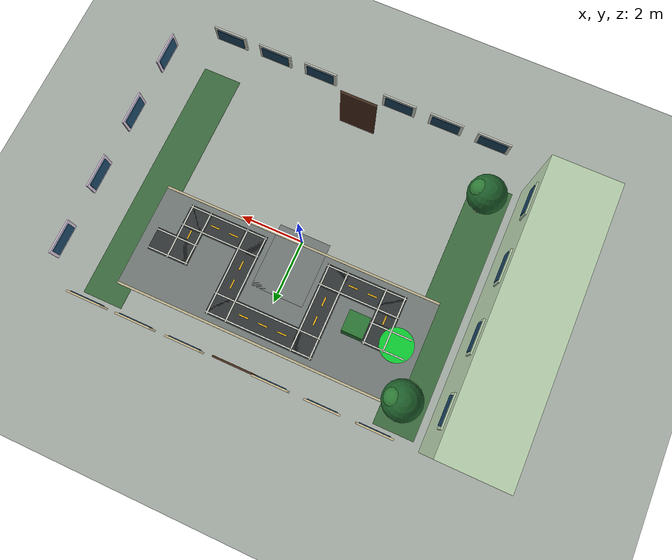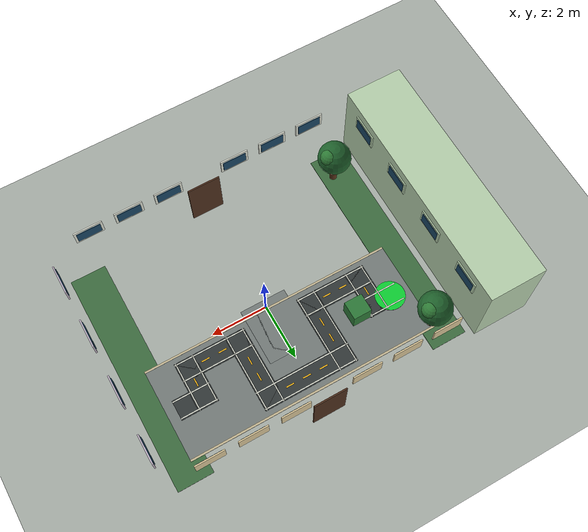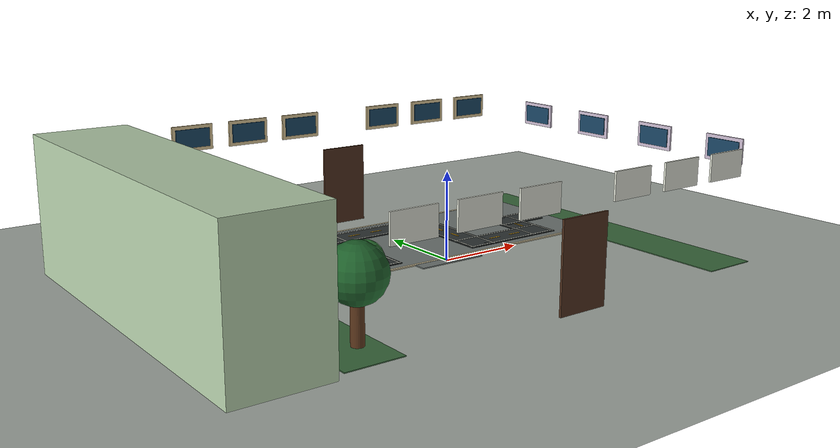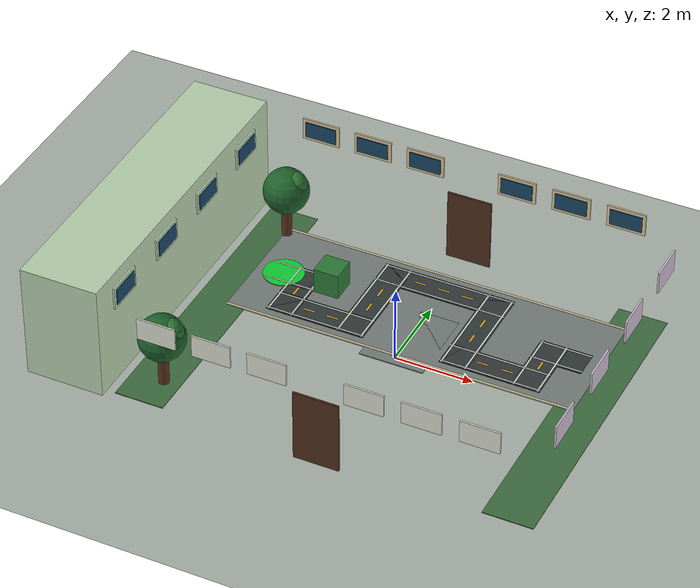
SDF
<sdf version="1.9">
 <world name="campus_world">
  <model name="ground">
   <static>true</static>
   <link name="ground_link">
    <collision name="ground_collision">
     <geometry><plane><normal>0 0 1</normal><size>100 100</size></plane></geometry>
    </collision>
    <visual name="ground_visual">
     <geometry><plane><normal>0 0 1</normal><size>100 100</size></plane></geometry>
     <material><diffuse>0.66 0.69 0.66 1</diffuse></material>
    </visual>
   </link>
  </model>
  <model name="start_marker">
   <static>true</static>
   <pose>-3.8 1.7 0.042 0 0 0</pose>
   <link name="marker_link">
    <visual name="green_start_pad">
     <geometry><cylinder><radius>0.52</radius><length>0.02</length></cylinder></geometry>
     <material><diffuse>0.05 0.82 0.20 1</diffuse></material>
    </visual>
   </link>
  </model>
  <model name="campus_route_roadmap">
   <static>true</static>
   <link name="road_visuals">
    <visual name="asphalt_start_approach">
     <pose>-3.500 1.700 0.0415 0 0 0</pose>
     <geometry><box><size>1.320 0.720 0.0180</size></box></geometry>
     <material>
      <ambient>0.20 0.22 0.22 1</ambient>
      <diffuse>0.20 0.22 0.22 1</diffuse>
      <specular>0.04 0.04 0.04 1</specular>
     </material>
    </visual>
    <visual name="edge_north_start_approach">
     <pose>-3.500 2.005 0.0525 0 0 0</pose>
     <geometry><box><size>1.320 0.042 0.0035</size></box></geometry>
     <material>
      <ambient>0.88 0.89 0.84 1</ambient>
      <diffuse>0.88 0.89 0.84 1</diffuse>
      <specular>0.04 0.04 0.04 1</specular>
     </material>
    </visual>
    <visual name="edge_south_start_approach">
     <pose>-3.500 1.395 0.0525 0 0 0</pose>
     <geometry><box><size>1.320 0.042 0.0035</size></box></geometry>
     <material>
      <ambient>0.88 0.89 0.84 1</ambient>
      <diffuse>0.88 0.89 0.84 1</diffuse>
      <specular>0.04 0.04 0.04 1</specular>
     </material>
    </visual>
    <visual name="asphalt_down_before_block_1">
     <pose>-3.200 1.175 0.0415 0 0 0</pose>
     <geometry><box><size>0.720 1.770 0.0180</size></box></geometry>
     <material>
      <ambient>0.20 0.22 0.22 1</ambient>
      <diffuse>0.20 0.22 0.22 1</diffuse>
      <specular>0.04 0.04 0.04 1</specular>
     </material>
    </visual>
    <visual name="edge_east_down_before_block_1">
     <pose>-2.895 1.175 0.0525 0 0 0</pose>
     <geometry><box><size>0.042 1.770 0.0035</size></box></geometry>
     <material>
      <ambient>0.88 0.89 0.84 1</ambient>
      <diffuse>0.88 0.89 0.84 1</diffuse>
      <specular>0.04 0.04 0.04 1</specular>
     </material>
    </visual>
    <visual name="edge_west_down_before_block_1">
     <pose>-3.505 1.175 0.0525 0 0 0</pose>
     <geometry><box><size>0.042 1.770 0.0035</size></box></geometry>
     <material>
      <ambient>0.88 0.89 0.84 1</ambient>
      <diffuse>0.88 0.89 0.84 1</diffuse>
      <specular>0.04 0.04 0.04 1</specular>
     </material>
    </visual>
    <visual name="yellow_dash_down_before_block_1_1">
     <pose>-3.200 1.175 0.0530 0 0 0</pose>
     <geometry><box><size>0.044 0.300 0.0035</size></box></geometry>
     <material>
      <ambient>0.98 0.73 0.10 1</ambient>
      <diffuse>0.98 0.73 0.10 1</diffuse>
      <specular>0.04 0.04 0.04 1</specular>
     </material>
    </visual>
    <visual name="asphalt_below_block_1">
     <pose>-2.275 0.650 0.0415 0 0 0</pose>
     <geometry><box><size>2.570 0.720 0.0180</size></box></geometry>
     <material>
      <ambient>0.20 0.22 0.22 1</ambient>
      <diffuse>0.20 0.22 0.22 1</diffuse>
      <specular>0.04 0.04 0.04 1</specular>
     </material>
    </visual>
    <visual name="edge_north_below_block_1">
     <pose>-2.275 0.955 0.0525 0 0 0</pose>
     <geometry><box><size>2.570 0.042 0.0035</size></box></geometry>
     <material>
      <ambient>0.88 0.89 0.84 1</ambient>
      <diffuse>0.88 0.89 0.84 1</diffuse>
      <specular>0.04 0.04 0.04 1</specular>
     </material>
    </visual>
    <visual name="edge_south_below_block_1">
     <pose>-2.275 0.345 0.0525 0 0 0</pose>
     <geometry><box><size>2.570 0.042 0.0035</size></box></geometry>
     <material>
      <ambient>0.88 0.89 0.84 1</ambient>
      <diffuse>0.88 0.89 0.84 1</diffuse>
      <specular>0.04 0.04 0.04 1</specular>
     </material>
    </visual>
    <visual name="yellow_dash_below_block_1_1">
     <pose>-2.585 0.650 0.0530 0 0 0</pose>
     <geometry><box><size>0.300 0.044 0.0035</size></box></geometry>
     <material>
      <ambient>0.98 0.73 0.10 1</ambient>
      <diffuse>0.98 0.73 0.10 1</diffuse>
      <specular>0.04 0.04 0.04 1</specular>
     </material>
    </visual>
    <visual name="yellow_dash_below_block_1_2">
     <pose>-1.965 0.650 0.0530 0 0 0</pose>
     <geometry><box><size>0.300 0.044 0.0035</size></box></geometry>
     <material>
      <ambient>0.98 0.73 0.10 1</ambient>
      <diffuse>0.98 0.73 0.10 1</diffuse>
      <specular>0.04 0.04 0.04 1</specular>
     </material>
    </visual>
    <visual name="asphalt_up_between_blocks_1_2">
     <pose>-1.350 1.700 0.0415 0 0 0</pose>
     <geometry><box><size>0.720 2.820 0.0180</size></box></geometry>
     <material>
      <ambient>0.20 0.22 0.22 1</ambient>
      <diffuse>0.20 0.22 0.22 1</diffuse>
      <specular>0.04 0.04 0.04 1</specular>
     </material>
    </visual>
    <visual name="edge_east_up_between_blocks_1_2">
     <pose>-1.045 1.700 0.0525 0 0 0</pose>
     <geometry><box><size>0.042 2.820 0.0035</size></box></geometry>
     <material>
      <ambient>0.88 0.89 0.84 1</ambient>
      <diffuse>0.88 0.89 0.84 1</diffuse>
      <specular>0.04 0.04 0.04 1</specular>
     </material>
    </visual>
    <visual name="edge_west_up_between_blocks_1_2">
     <pose>-1.655 1.700 0.0525 0 0 0</pose>
     <geometry><box><size>0.042 2.820 0.0035</size></box></geometry>
     <material>
      <ambient>0.88 0.89 0.84 1</ambient>
      <diffuse>0.88 0.89 0.84 1</diffuse>
      <specular>0.04 0.04 0.04 1</specular>
     </material>
    </visual>
    <visual name="yellow_dash_up_between_blocks_1_2_1">
     <pose>-1.350 1.390 0.0530 0 0 0</pose>
     <geometry><box><size>0.044 0.300 0.0035</size></box></geometry>
     <material>
      <ambient>0.98 0.73 0.10 1</ambient>
      <diffuse>0.98 0.73 0.10 1</diffuse>
      <specular>0.04 0.04 0.04 1</specular>
     </material>
    </visual>
    <visual name="yellow_dash_up_between_blocks_1_2_2">
     <pose>-1.350 2.010 0.0530 0 0 0</pose>
     <geometry><box><size>0.044 0.300 0.0035</size></box></geometry>
     <material>
      <ambient>0.98 0.73 0.10 1</ambient>
      <diffuse>0.98 0.73 0.10 1</diffuse>
      <specular>0.04 0.04 0.04 1</specular>
     </material>
    </visual>
    <visual name="asphalt_above_block_2">
     <pose>0.000 2.750 0.0415 0 0 0</pose>
     <geometry><box><size>3.420 0.720 0.0180</size></box></geometry>
     <material>
      <ambient>0.20 0.22 0.22 1</ambient>
      <diffuse>0.20 0.22 0.22 1</diffuse>
      <specular>0.04 0.04 0.04 1</specular>
     </material>
    </visual>
    <visual name="edge_north_above_block_2">
     <pose>0.000 3.055 0.0525 0 0 0</pose>
     <geometry><box><size>3.420 0.042 0.0035</size></box></geometry>
     <material>
      <ambient>0.88 0.89 0.84 1</ambient>
      <diffuse>0.88 0.89 0.84 1</diffuse>
      <specular>0.04 0.04 0.04 1</specular>
     </material>
    </visual>
    <visual name="edge_south_above_block_2">
     <pose>0.000 2.445 0.0525 0 0 0</pose>
     <geometry><box><size>3.420 0.042 0.0035</size></box></geometry>
     <material>
      <ambient>0.88 0.89 0.84 1</ambient>
      <diffuse>0.88 0.89 0.84 1</diffuse>
      <specular>0.04 0.04 0.04 1</specular>
     </material>
    </visual>
    <visual name="yellow_dash_above_block_2_1">
     <pose>-0.620 2.750 0.0530 0 0 0</pose>
     <geometry><box><size>0.300 0.044 0.0035</size></box></geometry>
     <material>
      <ambient>0.98 0.73 0.10 1</ambient>
      <diffuse>0.98 0.73 0.10 1</diffuse>
      <specular>0.04 0.04 0.04 1</specular>
     </material>
    </visual>
    <visual name="yellow_dash_above_block_2_2">
     <pose>0.000 2.750 0.0530 0 0 0</pose>
     <geometry><box><size>0.300 0.044 0.0035</size></box></geometry>
     <material>
      <ambient>0.98 0.73 0.10 1</ambient>
      <diffuse>0.98 0.73 0.10 1</diffuse>
      <specular>0.04 0.04 0.04 1</specular>
     </material>
    </visual>
    <visual name="yellow_dash_above_block_2_3">
     <pose>0.620 2.750 0.0530 0 0 0</pose>
     <geometry><box><size>0.300 0.044 0.0035</size></box></geometry>
     <material>
      <ambient>0.98 0.73 0.10 1</ambient>
      <diffuse>0.98 0.73 0.10 1</diffuse>
      <specular>0.04 0.04 0.04 1</specular>
     </material>
    </visual>
    <visual name="asphalt_down_between_blocks_2_3">
     <pose>1.350 1.700 0.0415 0 0 0</pose>
     <geometry><box><size>0.720 2.820 0.0180</size></box></geometry>
     <material>
      <ambient>0.20 0.22 0.22 1</ambient>
      <diffuse>0.20 0.22 0.22 1</diffuse>
      <specular>0.04 0.04 0.04 1</specular>
     </material>
    </visual>
    <visual name="edge_east_down_between_blocks_2_3">
     <pose>1.655 1.700 0.0525 0 0 0</pose>
     <geometry><box><size>0.042 2.820 0.0035</size></box></geometry>
     <material>
      <ambient>0.88 0.89 0.84 1</ambient>
      <diffuse>0.88 0.89 0.84 1</diffuse>
      <specular>0.04 0.04 0.04 1</specular>
     </material>
    </visual>
    <visual name="edge_west_down_between_blocks_2_3">
     <pose>1.045 1.700 0.0525 0 0 0</pose>
     <geometry><box><size>0.042 2.820 0.0035</size></box></geometry>
     <material>
      <ambient>0.88 0.89 0.84 1</ambient>
      <diffuse>0.88 0.89 0.84 1</diffuse>
      <specular>0.04 0.04 0.04 1</specular>
     </material>
    </visual>
    <visual name="yellow_dash_down_between_blocks_2_3_1">
     <pose>1.350 1.390 0.0530 0 0 0</pose>
     <geometry><box><size>0.044 0.300 0.0035</size></box></geometry>
     <material>
      <ambient>0.98 0.73 0.10 1</ambient>
      <diffuse>0.98 0.73 0.10 1</diffuse>
      <specular>0.04 0.04 0.04 1</specular>
     </material>
    </visual>
    <visual name="yellow_dash_down_between_blocks_2_3_2">
     <pose>1.350 2.010 0.0530 0 0 0</pose>
     <geometry><box><size>0.044 0.300 0.0035</size></box></geometry>
     <material>
      <ambient>0.98 0.73 0.10 1</ambient>
      <diffuse>0.98 0.73 0.10 1</diffuse>
      <specular>0.04 0.04 0.04 1</specular>
     </material>
    </visual>
    <visual name="asphalt_below_block_3">
     <pose>2.275 0.650 0.0415 0 0 0</pose>
     <geometry><box><size>2.570 0.720 0.0180</size></box></geometry>
     <material>
      <ambient>0.20 0.22 0.22 1</ambient>
      <diffuse>0.20 0.22 0.22 1</diffuse>
      <specular>0.04 0.04 0.04 1</specular>
     </material>
    </visual>
    <visual name="edge_north_below_block_3">
     <pose>2.275 0.955 0.0525 0 0 0</pose>
     <geometry><box><size>2.570 0.042 0.0035</size></box></geometry>
     <material>
      <ambient>0.88 0.89 0.84 1</ambient>
      <diffuse>0.88 0.89 0.84 1</diffuse>
      <specular>0.04 0.04 0.04 1</specular>
     </material>
    </visual>
    <visual name="edge_south_below_block_3">
     <pose>2.275 0.345 0.0525 0 0 0</pose>
     <geometry><box><size>2.570 0.042 0.0035</size></box></geometry>
     <material>
      <ambient>0.88 0.89 0.84 1</ambient>
      <diffuse>0.88 0.89 0.84 1</diffuse>
      <specular>0.04 0.04 0.04 1</specular>
     </material>
    </visual>
    <visual name="yellow_dash_below_block_3_1">
     <pose>1.965 0.650 0.0530 0 0 0</pose>
     <geometry><box><size>0.300 0.044 0.0035</size></box></geometry>
     <material>
      <ambient>0.98 0.73 0.10 1</ambient>
      <diffuse>0.98 0.73 0.10 1</diffuse>
      <specular>0.04 0.04 0.04 1</specular>
     </material>
    </visual>
    <visual name="yellow_dash_below_block_3_2">
     <pose>2.585 0.650 0.0530 0 0 0</pose>
     <geometry><box><size>0.300 0.044 0.0035</size></box></geometry>
     <material>
      <ambient>0.98 0.73 0.10 1</ambient>
      <diffuse>0.98 0.73 0.10 1</diffuse>
      <specular>0.04 0.04 0.04 1</specular>
     </material>
    </visual>
    <visual name="asphalt_up_after_block_3">
     <pose>3.200 1.175 0.0415 0 0 0</pose>
     <geometry><box><size>0.720 1.770 0.0180</size></box></geometry>
     <material>
      <ambient>0.20 0.22 0.22 1</ambient>
      <diffuse>0.20 0.22 0.22 1</diffuse>
      <specular>0.04 0.04 0.04 1</specular>
     </material>
    </visual>
    <visual name="edge_east_up_after_block_3">
     <pose>3.505 1.175 0.0525 0 0 0</pose>
     <geometry><box><size>0.042 1.770 0.0035</size></box></geometry>
     <material>
      <ambient>0.88 0.89 0.84 1</ambient>
      <diffuse>0.88 0.89 0.84 1</diffuse>
      <specular>0.04 0.04 0.04 1</specular>
     </material>
    </visual>
    <visual name="edge_west_up_after_block_3">
     <pose>2.895 1.175 0.0525 0 0 0</pose>
     <geometry><box><size>0.042 1.770 0.0035</size></box></geometry>
     <material>
      <ambient>0.88 0.89 0.84 1</ambient>
      <diffuse>0.88 0.89 0.84 1</diffuse>
      <specular>0.04 0.04 0.04 1</specular>
     </material>
    </visual>
    <visual name="yellow_dash_up_after_block_3_1">
     <pose>3.200 1.175 0.0530 0 0 0</pose>
     <geometry><box><size>0.044 0.300 0.0035</size></box></geometry>
     <material>
      <ambient>0.98 0.73 0.10 1</ambient>
      <diffuse>0.98 0.73 0.10 1</diffuse>
      <specular>0.04 0.04 0.04 1</specular>
     </material>
    </visual>
    <visual name="asphalt_finish_approach">
     <pose>3.500 1.700 0.0415 0 0 0</pose>
     <geometry><box><size>1.320 0.720 0.0180</size></box></geometry>
     <material>
      <ambient>0.20 0.22 0.22 1</ambient>
      <diffuse>0.20 0.22 0.22 1</diffuse>
      <specular>0.04 0.04 0.04 1</specular>
     </material>
    </visual>
    <visual name="edge_north_finish_approach">
     <pose>3.500 2.005 0.0525 0 0 0</pose>
     <geometry><box><size>1.320 0.042 0.0035</size></box></geometry>
     <material>
      <ambient>0.88 0.89 0.84 1</ambient>
      <diffuse>0.88 0.89 0.84 1</diffuse>
      <specular>0.04 0.04 0.04 1</specular>
     </material>
    </visual>
    <visual name="edge_south_finish_approach">
     <pose>3.500 1.395 0.0525 0 0 0</pose>
     <geometry><box><size>1.320 0.042 0.0035</size></box></geometry>
     <material>
      <ambient>0.88 0.89 0.84 1</ambient>
      <diffuse>0.88 0.89 0.84 1</diffuse>
      <specular>0.04 0.04 0.04 1</specular>
     </material>
    </visual>
   </link>
  </model>
  <model name="campus_map_paths">
   <static>true</static>
   <link name="path_visuals">
    <visual name="main_east_west_path">
     <pose>0 1.70 0.018 0 0 0</pose>
     <geometry><box><size>9.0 3.20 0.025</size></box></geometry>
     <material><diffuse>0.46 0.49 0.48 1</diffuse></material>
    </visual>
    <visual name="south_entry_path">
     <pose>0 0.78 0.018 0 0 0</pose>
     <geometry><box><size>1.65 2.05 0.025</size></box></geometry>
     <material><diffuse>0.46 0.49 0.48 1</diffuse></material>
    </visual>
    <visual name="upper_path_edge_south">
     <pose>0 0.07 0.020 0 0 0</pose>
     <geometry><box><size>9.0 0.07 0.028</size></box></geometry>
     <material><diffuse>0.77 0.72 0.58 1</diffuse></material>
    </visual>
    <visual name="upper_path_edge_north">
     <pose>0 3.33 0.020 0 0 0</pose>
     <geometry><box><size>9.0 0.07 0.028</size></box></geometry>
     <material><diffuse>0.77 0.72 0.58 1</diffuse></material>
    </visual>
    <visual name="west_grass_verge">
     <pose>-4.65 0 0.012 0 0 0</pose>
     <geometry><box><size>1.25 8.0 0.02</size></box></geometry>
     <material><diffuse>0.24 0.43 0.25 1</diffuse></material>
    </visual>
    <visual name="east_grass_verge">
     <pose>4.65 0 0.012 0 0 0</pose>
     <geometry><box><size>1.25 8.0 0.02</size></box></geometry>
     <material><diffuse>0.24 0.43 0.25 1</diffuse></material>
    </visual>
   </link>
  </model>
  <model name="tree_north_west">
   <static>true</static>
   <pose>-4.45 3.15 0 0 0 0</pose>
   <link name="tree">
    <collision name="trunk_collision">
     <pose>0 0 0.43 0 0 0</pose>
     <geometry><cylinder><radius>0.13</radius><length>0.86</length></cylinder></geometry>
    </collision>
    <visual name="trunk">
     <pose>0 0 0.43 0 0 0</pose>
     <geometry><cylinder><radius>0.13</radius><length>0.86</length></cylinder></geometry>
     <material><diffuse>0.34 0.20 0.10 1</diffuse></material>
    </visual>
    <visual name="canopy">
     <pose>0 0 1.34 0 0 0</pose>
     <geometry><sphere><radius>0.58</radius></sphere></geometry>
     <material><diffuse>0.12 0.38 0.17 1</diffuse></material>
    </visual>
    <visual name="canopy_highlight">
     <pose>0.20 0.03 1.55 0 0 0</pose>
     <geometry><sphere><radius>0.34</radius></sphere></geometry>
     <material><diffuse>0.18 0.48 0.21 1</diffuse></material>
    </visual>
   </link>
  </model>
  <model name="tree_south_west">
   <static>true</static>
   <pose>-4.45 -3.15 0 0 0 0</pose>
   <link name="tree">
    <collision name="trunk_collision">
     <pose>0 0 0.43 0 0 0</pose>
     <geometry><cylinder><radius>0.13</radius><length>0.86</length></cylinder></geometry>
    </collision>
    <visual name="trunk">
     <pose>0 0 0.43 0 0 0</pose>
     <geometry><cylinder><radius>0.13</radius><length>0.86</length></cylinder></geometry>
     <material><diffuse>0.34 0.20 0.10 1</diffuse></material>
    </visual>
    <visual name="canopy">
     <pose>0 0 1.34 0 0 0</pose>
     <geometry><sphere><radius>0.58</radius></sphere></geometry>
     <material><diffuse>0.12 0.38 0.17 1</diffuse></material>
    </visual>
    <visual name="canopy_highlight">
     <pose>0.20 0.03 1.55 0 0 0</pose>
     <geometry><sphere><radius>0.34</radius></sphere></geometry>
     <material><diffuse>0.18 0.48 0.21 1</diffuse></material>
    </visual>
   </link>
  </model>
  <model name="campus_facade_details">
   <static>true</static>
   <link name="facade_visuals">
    <visual name="north_window_trim_0">
     <pose>-4.0 4.174 2.55 0 0 0</pose>
     <geometry><box><size>0.98 0.045 0.58</size></box></geometry>
     <material><diffuse>0.85 0.77 0.59 1</diffuse></material>
    </visual>
    <visual name="north_window_glass_0">
     <pose>-4.0 4.145 2.55 0 0 0</pose>
     <geometry><box><size>0.82 0.035 0.42</size></box></geometry>
     <material><diffuse>0.10 0.27 0.39 1</diffuse></material>
    </visual>
    <visual name="south_window_trim_0">
     <pose>-4.0 -4.174 2.35 0 0 0</pose>
     <geometry><box><size>0.98 0.045 0.58</size></box></geometry>
     <material><diffuse>0.86 0.87 0.82 1</diffuse></material>
    </visual>
    <visual name="south_window_glass_0">
     <pose>-4.0 -4.145 2.35 0 0 0</pose>
     <geometry><box><size>0.82 0.035 0.42</size></box></geometry>
     <material><diffuse>0.10 0.27 0.39 1</diffuse></material>
    </visual>
    <visual name="north_window_trim_1">
     <pose>-2.6 4.174 2.55 0 0 0</pose>
     <geometry><box><size>0.98 0.045 0.58</size></box></geometry>
     <material><diffuse>0.85 0.77 0.59 1</diffuse></material>
    </visual>
    <visual name="north_window_glass_1">
     <pose>-2.6 4.145 2.55 0 0 0</pose>
     <geometry><box><size>0.82 0.035 0.42</size></box></geometry>
     <material><diffuse>0.10 0.27 0.39 1</diffuse></material>
    </visual>
    <visual name="south_window_trim_1">
     <pose>-2.6 -4.174 2.35 0 0 0</pose>
     <geometry><box><size>0.98 0.045 0.58</size></box></geometry>
     <material><diffuse>0.86 0.87 0.82 1</diffuse></material>
    </visual>
    <visual name="south_window_glass_1">
     <pose>-2.6 -4.145 2.35 0 0 0</pose>
     <geometry><box><size>0.82 0.035 0.42</size></box></geometry>
     <material><diffuse>0.10 0.27 0.39 1</diffuse></material>
    </visual>
    <visual name="north_window_trim_2">
     <pose>-1.2 4.174 2.55 0 0 0</pose>
     <geometry><box><size>0.98 0.045 0.58</size></box></geometry>
     <material><diffuse>0.85 0.77 0.59 1</diffuse></material>
    </visual>
    <visual name="north_window_glass_2">
     <pose>-1.2 4.145 2.55 0 0 0</pose>
     <geometry><box><size>0.82 0.035 0.42</size></box></geometry>
     <material><diffuse>0.10 0.27 0.39 1</diffuse></material>
    </visual>
    <visual name="south_window_trim_2">
     <pose>-1.2 -4.174 2.35 0 0 0</pose>
     <geometry><box><size>0.98 0.045 0.58</size></box></geometry>
     <material><diffuse>0.86 0.87 0.82 1</diffuse></material>
    </visual>
    <visual name="south_window_glass_2">
     <pose>-1.2 -4.145 2.35 0 0 0</pose>
     <geometry><box><size>0.82 0.035 0.42</size></box></geometry>
     <material><diffuse>0.10 0.27 0.39 1</diffuse></material>
    </visual>
    <visual name="north_window_trim_3">
     <pose>1.2 4.174 2.55 0 0 0</pose>
     <geometry><box><size>0.98 0.045 0.58</size></box></geometry>
     <material><diffuse>0.85 0.77 0.59 1</diffuse></material>
    </visual>
    <visual name="north_window_glass_3">
     <pose>1.2 4.145 2.55 0 0 0</pose>
     <geometry><box><size>0.82 0.035 0.42</size></box></geometry>
     <material><diffuse>0.10 0.27 0.39 1</diffuse></material>
    </visual>
    <visual name="south_window_trim_3">
     <pose>1.2 -4.174 2.35 0 0 0</pose>
     <geometry><box><size>0.98 0.045 0.58</size></box></geometry>
     <material><diffuse>0.86 0.87 0.82 1</diffuse></material>
    </visual>
    <visual name="south_window_glass_3">
     <pose>1.2 -4.145 2.35 0 0 0</pose>
     <geometry><box><size>0.82 0.035 0.42</size></box></geometry>
     <material><diffuse>0.10 0.27 0.39 1</diffuse></material>
    </visual>
    <visual name="north_window_trim_4">
     <pose>2.6 4.174 2.55 0 0 0</pose>
     <geometry><box><size>0.98 0.045 0.58</size></box></geometry>
     <material><diffuse>0.85 0.77 0.59 1</diffuse></material>
    </visual>
    <visual name="north_window_glass_4">
     <pose>2.6 4.145 2.55 0 0 0</pose>
     <geometry><box><size>0.82 0.035 0.42</size></box></geometry>
     <material><diffuse>0.10 0.27 0.39 1</diffuse></material>
    </visual>
    <visual name="south_window_trim_4">
     <pose>2.6 -4.174 2.35 0 0 0</pose>
     <geometry><box><size>0.98 0.045 0.58</size></box></geometry>
     <material><diffuse>0.86 0.87 0.82 1</diffuse></material>
    </visual>
    <visual name="south_window_glass_4">
     <pose>2.6 -4.145 2.35 0 0 0</pose>
     <geometry><box><size>0.82 0.035 0.42</size></box></geometry>
     <material><diffuse>0.10 0.27 0.39 1</diffuse></material>
    </visual>
    <visual name="north_window_trim_5">
     <pose>4.0 4.174 2.55 0 0 0</pose>
     <geometry><box><size>0.98 0.045 0.58</size></box></geometry>
     <material><diffuse>0.85 0.77 0.59 1</diffuse></material>
    </visual>
    <visual name="north_window_glass_5">
     <pose>4.0 4.145 2.55 0 0 0</pose>
     <geometry><box><size>0.82 0.035 0.42</size></box></geometry>
     <material><diffuse>0.10 0.27 0.39 1</diffuse></material>
    </visual>
    <visual name="south_window_trim_5">
     <pose>4.0 -4.174 2.35 0 0 0</pose>
     <geometry><box><size>0.98 0.045 0.58</size></box></geometry>
     <material><diffuse>0.86 0.87 0.82 1</diffuse></material>
    </visual>
    <visual name="south_window_glass_5">
     <pose>4.0 -4.145 2.35 0 0 0</pose>
     <geometry><box><size>0.82 0.035 0.42</size></box></geometry>
     <material><diffuse>0.10 0.27 0.39 1</diffuse></material>
    </visual>
    <visual name="east_window_trim_6">
     <pose>5.474 -3.0 2.35 0 0 0</pose>
     <geometry><box><size>0.045 0.98 0.58</size></box></geometry>
     <material><diffuse>0.80 0.74 0.82 1</diffuse></material>
    </visual>
    <visual name="east_window_glass_6">
     <pose>5.445 -3.0 2.35 0 0 0</pose>
     <geometry><box><size>0.035 0.82 0.42</size></box></geometry>
     <material><diffuse>0.10 0.27 0.39 1</diffuse></material>
    </visual>
    <visual name="west_window_trim_6">
     <pose>-5.474 -3.0 2.35 0 0 0</pose>
     <geometry><box><size>0.045 0.98 0.58</size></box></geometry>
     <material><diffuse>0.72 0.82 0.68 1</diffuse></material>
    </visual>
    <visual name="west_window_glass_6">
     <pose>-5.445 -3.0 2.35 0 0 0</pose>
     <geometry><box><size>0.035 0.82 0.42</size></box></geometry>
     <material><diffuse>0.10 0.27 0.39 1</diffuse></material>
    </visual>
    <visual name="east_window_trim_7">
     <pose>5.474 -1.0 2.35 0 0 0</pose>
     <geometry><box><size>0.045 0.98 0.58</size></box></geometry>
     <material><diffuse>0.80 0.74 0.82 1</diffuse></material>
    </visual>
    <visual name="east_window_glass_7">
     <pose>5.445 -1.0 2.35 0 0 0</pose>
     <geometry><box><size>0.035 0.82 0.42</size></box></geometry>
     <material><diffuse>0.10 0.27 0.39 1</diffuse></material>
    </visual>
    <visual name="west_window_trim_7">
     <pose>-5.474 -1.0 2.35 0 0 0</pose>
     <geometry><box><size>0.045 0.98 0.58</size></box></geometry>
     <material><diffuse>0.72 0.82 0.68 1</diffuse></material>
    </visual>
    <visual name="west_window_glass_7">
     <pose>-5.445 -1.0 2.35 0 0 0</pose>
     <geometry><box><size>0.035 0.82 0.42</size></box></geometry>
     <material><diffuse>0.10 0.27 0.39 1</diffuse></material>
    </visual>
    <visual name="east_window_trim_8">
     <pose>5.474 1.0 2.35 0 0 0</pose>
     <geometry><box><size>0.045 0.98 0.58</size></box></geometry>
     <material><diffuse>0.80 0.74 0.82 1</diffuse></material>
    </visual>
    <visual name="east_window_glass_8">
     <pose>5.445 1.0 2.35 0 0 0</pose>
     <geometry><box><size>0.035 0.82 0.42</size></box></geometry>
     <material><diffuse>0.10 0.27 0.39 1</diffuse></material>
    </visual>
    <visual name="west_window_trim_8">
     <pose>-5.474 1.0 2.35 0 0 0</pose>
     <geometry><box><size>0.045 0.98 0.58</size></box></geometry>
     <material><diffuse>0.72 0.82 0.68 1</diffuse></material>
    </visual>
    <visual name="west_window_glass_8">
     <pose>-5.445 1.0 2.35 0 0 0</pose>
     <geometry><box><size>0.035 0.82 0.42</size></box></geometry>
     <material><diffuse>0.10 0.27 0.39 1</diffuse></material>
    </visual>
    <visual name="east_window_trim_9">
     <pose>5.474 3.0 2.35 0 0 0</pose>
     <geometry><box><size>0.045 0.98 0.58</size></box></geometry>
     <material><diffuse>0.80 0.74 0.82 1</diffuse></material>
    </visual>
    <visual name="east_window_glass_9">
     <pose>5.445 3.0 2.35 0 0 0</pose>
     <geometry><box><size>0.035 0.82 0.42</size></box></geometry>
     <material><diffuse>0.10 0.27 0.39 1</diffuse></material>
    </visual>
    <visual name="west_window_trim_9">
     <pose>-5.474 3.0 2.35 0 0 0</pose>
     <geometry><box><size>0.045 0.98 0.58</size></box></geometry>
     <material><diffuse>0.72 0.82 0.68 1</diffuse></material>
    </visual>
    <visual name="west_window_glass_9">
     <pose>-5.445 3.0 2.35 0 0 0</pose>
     <geometry><box><size>0.035 0.82 0.42</size></box></geometry>
     <material><diffuse>0.10 0.27 0.39 1</diffuse></material>
    </visual>
    <visual name="library_entry_door">
     <pose>0 -4.142 0.95 0 0 0</pose>
     <geometry><box><size>1.15 0.05 1.90</size></box></geometry>
     <material><diffuse>0.30 0.18 0.11 1</diffuse></material>
    </visual>
    <visual name="academic_entry_door">
     <pose>0 4.142 0.95 0 0 0</pose>
     <geometry><box><size>1.15 0.05 1.90</size></box></geometry>
     <material><diffuse>0.30 0.18 0.11 1</diffuse></material>
    </visual>
   </link>
  </model>
  <model name="west_lab">
   <static>true</static>
   <pose>-6.5 0 1.5 0 0 0</pose>
   <link name="body">
    <collision name="collision"><geometry><box><size>2 8.4 3</size></box></geometry></collision>
    <visual name="visual">
     <geometry><box><size>2 8.4 3</size></box></geometry>
     <material><diffuse>0.72 0.82 0.68 1</diffuse></material>
    </visual>
   </link>
  </model>
  <model name="obstacle_block_1">
   <static>true</static>
   <pose>-2.5 1.70 0.35 0 0 0</pose>
   <link name="body">
    <collision name="collision"><geometry><box><size>0.65 0.65 0.70</size></box></geometry></collision>
    <visual name="visual">
     <geometry><box><size>0.65 0.65 0.70</size></box></geometry>
     <material><diffuse>0.18 0.48 0.22 1</diffuse></material>
    </visual>
   </link>
  </model>
 </world>
</sdf>
